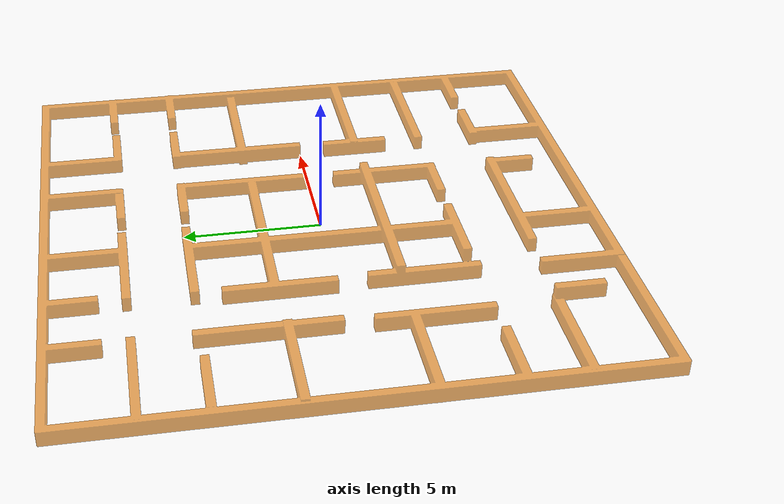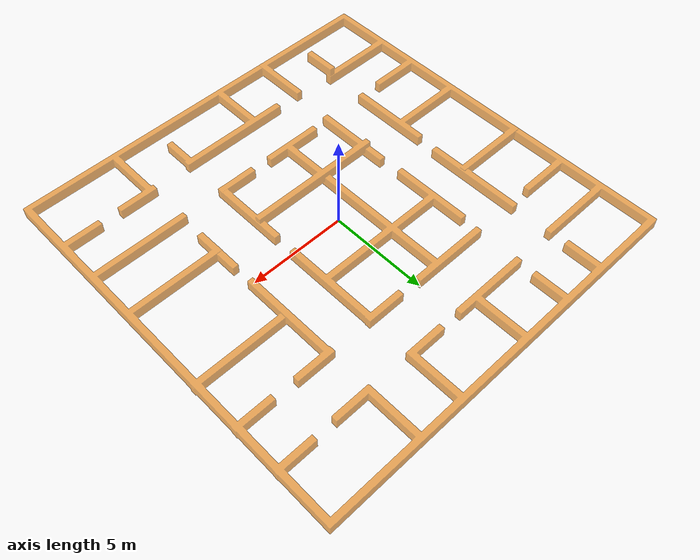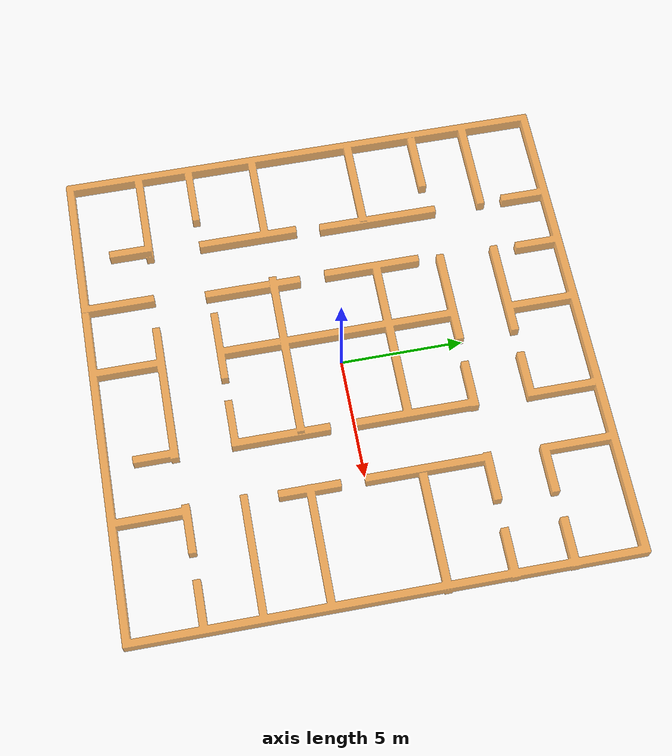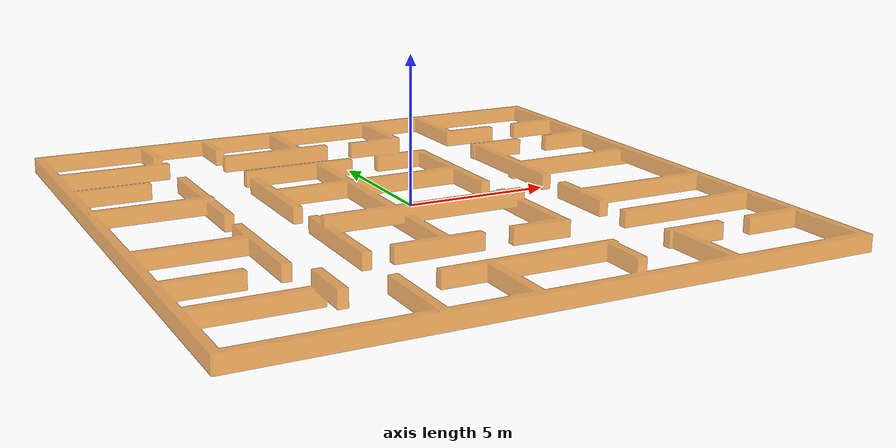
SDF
<?xml version="1.0"?>
<sdf version="1.5">
  <model name='naman_wall_environment'>
	<static>true</static>
	<link name='link'>
		<inertial>
			<mass>1</mass>
			<inertia>
			  <ixx>0.166667</ixx>
			  <ixy>0</ixy>
			  <ixz>0</ixz>
			  <iyy>0.166667</iyy>
			  <iyz>0</iyz>
			  <izz>0.166667</izz>
			</inertia>
			<pose>0 0 0 0 -0 0</pose>
	    </inertial>
		<self_collide>0</self_collide>
		<enable_wind>0</enable_wind>
		<kinematic>0</kinematic>
		<pose>0 0 0 0 -0 0</pose>
		<gravity>1</gravity>
		<visual name='visual'>
			<geometry>
				<mesh>
				<uri>model://naman_wall_environment/meshes/env.stl</uri>
				</mesh>
			</geometry>
			<material>
				<script>
				<name>Gazebo/Orange</name>
				<uri>file://media/materials/scripts/gazebo.material</uri>
				</script>
			</material>
			<pose>0 0 0 0 -0 0</pose>
			<transparency>0.3</transparency>
			<cast_shadows>1</cast_shadows>
		</visual>
		<collision name='collision'>
			<geometry>
				<mesh>
				<uri>model://naman_wall_environment/meshes/env.dae</uri>
				</mesh>
			</geometry>
			<pose>0 0 0 0 -0 0</pose>
		</collision>
	</link>
  </model>
</sdf>
